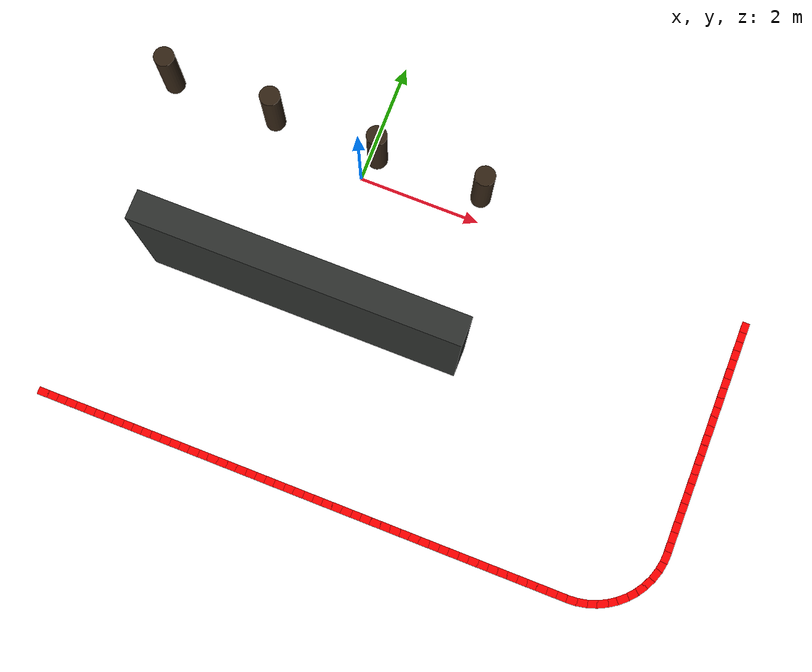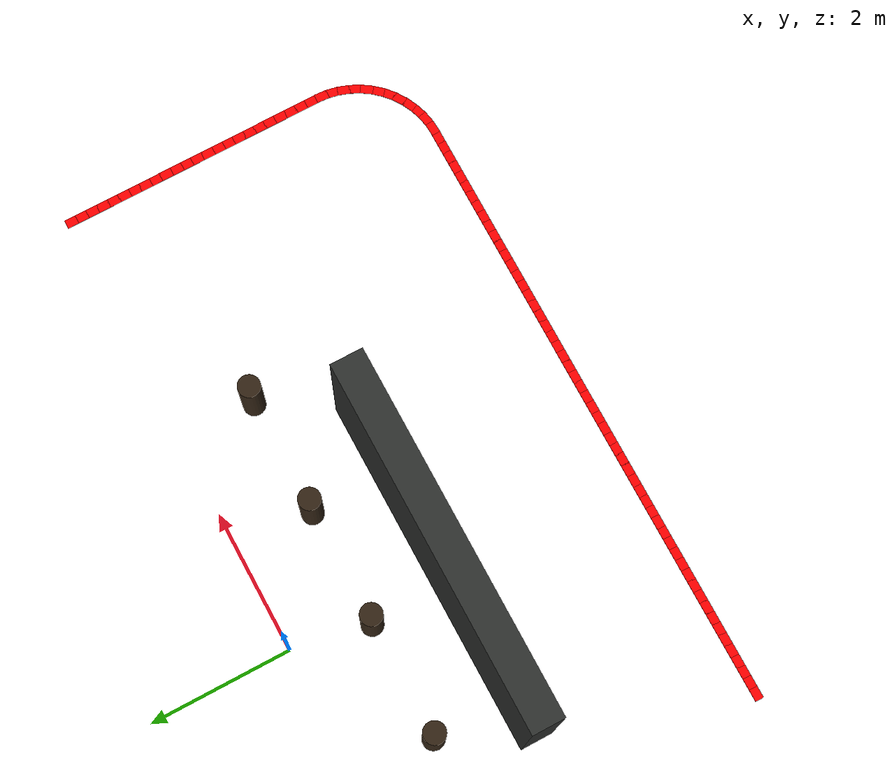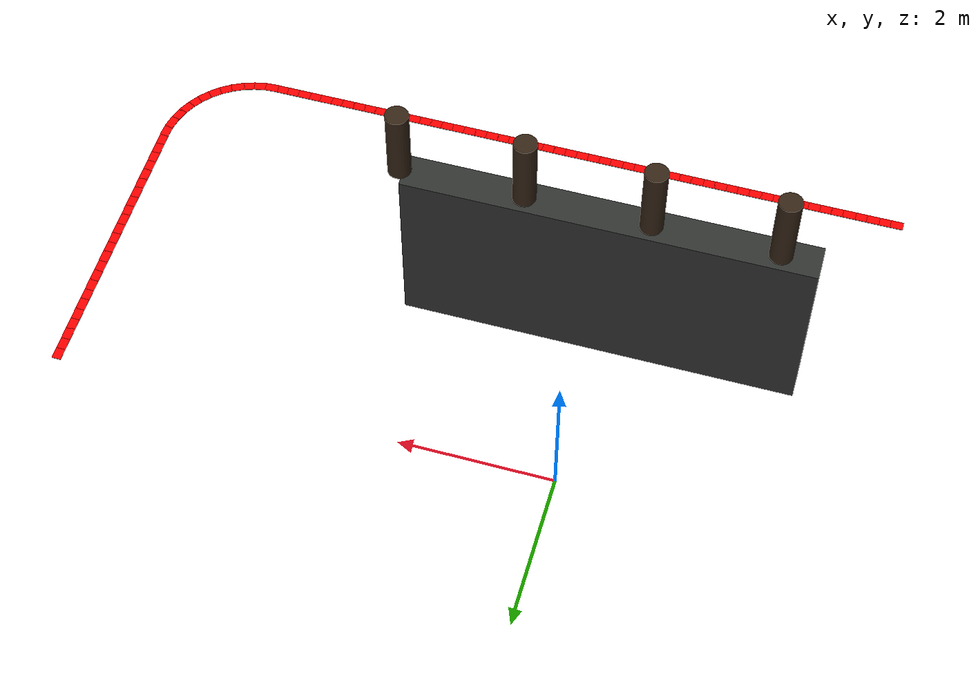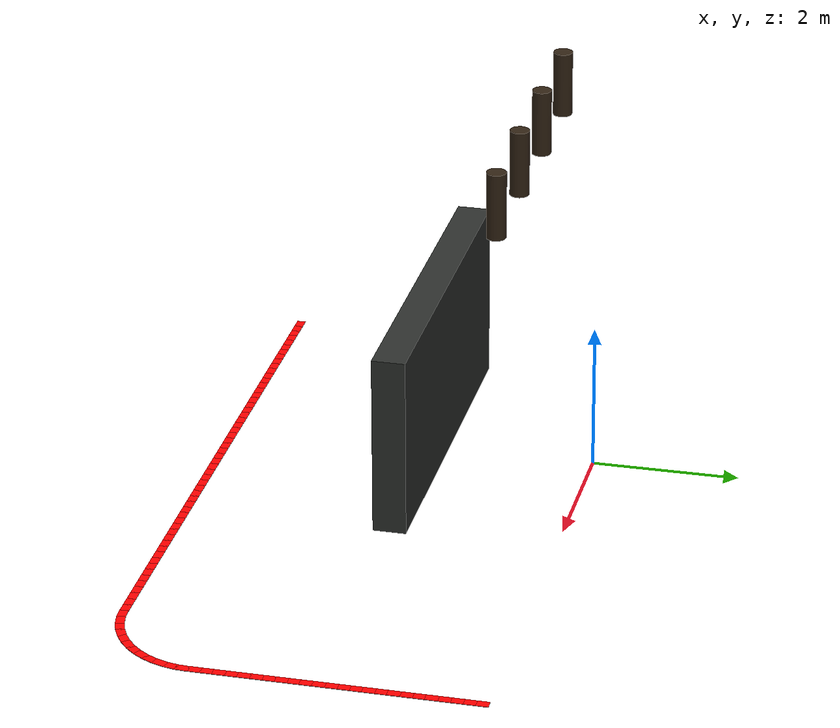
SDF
<sdf version="1.6">
 <world name="transformer_world">
  <model name="radiator_right">
   <static>true</static>
   <pose>0.0 -2.225 1.2398399999999998 0 0 0</pose>
   <link name="link">
    <collision name="collision">
     <geometry><box><size>5.04 0.45 2.4796799999999997</size></box></geometry>
    </collision>
    <visual name="visual">
     <geometry><box><size>5.04 0.45 2.4796799999999997</size></box></geometry>
     <material><ambient>0.18 0.19 0.18 1</ambient><diffuse>0.18 0.19 0.18 1</diffuse></material>
    </visual>
   </link>
  </model>
  <model name="transformer_bushing_0">
   <static>true</static>
   <pose>-2.1 -0.9 4.65 0 0 0</pose>
   <link name="link">
    <collision name="collision">
     <geometry><cylinder><radius>0.13</radius><length>0.9</length></cylinder></geometry>
    </collision>
    <visual name="visual">
     <geometry><cylinder><radius>0.13</radius><length>0.9</length></cylinder></geometry>
     <material><ambient>0.20 0.14 0.08 1</ambient><diffuse>0.20 0.14 0.08 1</diffuse></material>
    </visual>
   </link>
  </model>
  <model name="transformer_bushing_1">
   <static>true</static>
   <pose>-0.7 -0.9 4.65 0 0 0</pose>
   <link name="link">
    <collision name="collision">
     <geometry><cylinder><radius>0.13</radius><length>0.9</length></cylinder></geometry>
    </collision>
    <visual name="visual">
     <geometry><cylinder><radius>0.13</radius><length>0.9</length></cylinder></geometry>
     <material><ambient>0.20 0.14 0.08 1</ambient><diffuse>0.20 0.14 0.08 1</diffuse></material>
    </visual>
   </link>
  </model>
  <model name="transformer_bushing_2">
   <static>true</static>
   <pose>0.7 -0.9 4.65 0 0 0</pose>
   <link name="link">
    <collision name="collision">
     <geometry><cylinder><radius>0.13</radius><length>0.9</length></cylinder></geometry>
    </collision>
    <visual name="visual">
     <geometry><cylinder><radius>0.13</radius><length>0.9</length></cylinder></geometry>
     <material><ambient>0.20 0.14 0.08 1</ambient><diffuse>0.20 0.14 0.08 1</diffuse></material>
    </visual>
   </link>
  </model>
  <model name="transformer_bushing_3">
   <static>true</static>
   <pose>2.1 -0.9 4.65 0 0 0</pose>
   <link name="link">
    <collision name="collision">
     <geometry><cylinder><radius>0.13</radius><length>0.9</length></cylinder></geometry>
    </collision>
    <visual name="visual">
     <geometry><cylinder><radius>0.13</radius><length>0.9</length></cylinder></geometry>
     <material><ambient>0.20 0.14 0.08 1</ambient><diffuse>0.20 0.14 0.08 1</diffuse></material>
    </visual>
   </link>
  </model>
  <model name="path_bottom_12">
   <static>true</static>
   <pose>-3.32239 -5.00000 0.00300 0 0 0.00000</pose>
   <link name="link">
    <visual name="visual">
     <cast_shadows>false</cast_shadows>
     <geometry><box><size>0.16821 0.12000 0.00600</size></box></geometry>
     <material><ambient>1 0 0 1</ambient><diffuse>1 0 0 1</diffuse><emissive>0.35 0 0 1</emissive></material>
    </visual>
   </link>
  </model>
  <model name="path_bottom_13">
   <static>true</static>
   <pose>-3.16418 -5.00000 0.00300 0 0 0.00000</pose>
   <link name="link">
    <visual name="visual">
     <cast_shadows>false</cast_shadows>
     <geometry><box><size>0.16821 0.12000 0.00600</size></box></geometry>
     <material><ambient>1 0 0 1</ambient><diffuse>1 0 0 1</diffuse><emissive>0.35 0 0 1</emissive></material>
    </visual>
   </link>
  </model>
  <model name="path_bottom_14">
   <static>true</static>
   <pose>-3.00597 -5.00000 0.00300 0 0 0.00000</pose>
   <link name="link">
    <visual name="visual">
     <cast_shadows>false</cast_shadows>
     <geometry><box><size>0.16821 0.12000 0.00600</size></box></geometry>
     <material><ambient>1 0 0 1</ambient><diffuse>1 0 0 1</diffuse><emissive>0.35 0 0 1</emissive></material>
    </visual>
   </link>
  </model>
  <model name="path_bottom_15">
   <static>true</static>
   <pose>-2.84776 -5.00000 0.00300 0 0 0.00000</pose>
   <link name="link">
    <visual name="visual">
     <cast_shadows>false</cast_shadows>
     <geometry><box><size>0.16821 0.12000 0.00600</size></box></geometry>
     <material><ambient>1 0 0 1</ambient><diffuse>1 0 0 1</diffuse><emissive>0.35 0 0 1</emissive></material>
    </visual>
   </link>
  </model>
  <model name="path_bottom_16">
   <static>true</static>
   <pose>-2.68955 -5.00000 0.00300 0 0 0.00000</pose>
   <link name="link">
    <visual name="visual">
     <cast_shadows>false</cast_shadows>
     <geometry><box><size>0.16821 0.12000 0.00600</size></box></geometry>
     <material><ambient>1 0 0 1</ambient><diffuse>1 0 0 1</diffuse><emissive>0.35 0 0 1</emissive></material>
    </visual>
   </link>
  </model>
  <model name="path_bottom_17">
   <static>true</static>
   <pose>-2.53134 -5.00000 0.00300 0 0 0.00000</pose>
   <link name="link">
    <visual name="visual">
     <cast_shadows>false</cast_shadows>
     <geometry><box><size>0.16821 0.12000 0.00600</size></box></geometry>
     <material><ambient>1 0 0 1</ambient><diffuse>1 0 0 1</diffuse><emissive>0.35 0 0 1</emissive></material>
    </visual>
   </link>
  </model>
  <model name="path_bottom_18">
   <static>true</static>
   <pose>-2.37313 -5.00000 0.00300 0 0 0.00000</pose>
   <link name="link">
    <visual name="visual">
     <cast_shadows>false</cast_shadows>
     <geometry><box><size>0.16821 0.12000 0.00600</size></box></geometry>
     <material><ambient>1 0 0 1</ambient><diffuse>1 0 0 1</diffuse><emissive>0.35 0 0 1</emissive></material>
    </visual>
   </link>
  </model>
  <model name="path_bottom_19">
   <static>true</static>
   <pose>-2.21493 -5.00000 0.00300 0 0 0.00000</pose>
   <link name="link">
    <visual name="visual">
     <cast_shadows>false</cast_shadows>
     <geometry><box><size>0.16821 0.12000 0.00600</size></box></geometry>
     <material><ambient>1 0 0 1</ambient><diffuse>1 0 0 1</diffuse><emissive>0.35 0 0 1</emissive></material>
    </visual>
   </link>
  </model>
  <model name="path_bottom_20">
   <static>true</static>
   <pose>-2.05672 -5.00000 0.00300 0 0 0.00000</pose>
   <link name="link">
    <visual name="visual">
     <cast_shadows>false</cast_shadows>
     <geometry><box><size>0.16821 0.12000 0.00600</size></box></geometry>
     <material><ambient>1 0 0 1</ambient><diffuse>1 0 0 1</diffuse><emissive>0.35 0 0 1</emissive></material>
    </visual>
   </link>
  </model>
  <model name="path_bottom_21">
   <static>true</static>
   <pose>-1.89851 -5.00000 0.00300 0 0 0.00000</pose>
   <link name="link">
    <visual name="visual">
     <cast_shadows>false</cast_shadows>
     <geometry><box><size>0.16821 0.12000 0.00600</size></box></geometry>
     <material><ambient>1 0 0 1</ambient><diffuse>1 0 0 1</diffuse><emissive>0.35 0 0 1</emissive></material>
    </visual>
   </link>
  </model>
  <model name="path_bottom_22">
   <static>true</static>
   <pose>-1.74030 -5.00000 0.00300 0 0 0.00000</pose>
   <link name="link">
    <visual name="visual">
     <cast_shadows>false</cast_shadows>
     <geometry><box><size>0.16821 0.12000 0.00600</size></box></geometry>
     <material><ambient>1 0 0 1</ambient><diffuse>1 0 0 1</diffuse><emissive>0.35 0 0 1</emissive></material>
    </visual>
   </link>
  </model>
  <model name="path_bottom_23">
   <static>true</static>
   <pose>-1.58209 -5.00000 0.00300 0 0 0.00000</pose>
   <link name="link">
    <visual name="visual">
     <cast_shadows>false</cast_shadows>
     <geometry><box><size>0.16821 0.12000 0.00600</size></box></geometry>
     <material><ambient>1 0 0 1</ambient><diffuse>1 0 0 1</diffuse><emissive>0.35 0 0 1</emissive></material>
    </visual>
   </link>
  </model>
  <model name="path_bottom_24">
   <static>true</static>
   <pose>-1.42388 -5.00000 0.00300 0 0 0.00000</pose>
   <link name="link">
    <visual name="visual">
     <cast_shadows>false</cast_shadows>
     <geometry><box><size>0.16821 0.12000 0.00600</size></box></geometry>
     <material><ambient>1 0 0 1</ambient><diffuse>1 0 0 1</diffuse><emissive>0.35 0 0 1</emissive></material>
    </visual>
   </link>
  </model>
  <model name="path_bottom_25">
   <static>true</static>
   <pose>-1.26567 -5.00000 0.00300 0 0 0.00000</pose>
   <link name="link">
    <visual name="visual">
     <cast_shadows>false</cast_shadows>
     <geometry><box><size>0.16821 0.12000 0.00600</size></box></geometry>
     <material><ambient>1 0 0 1</ambient><diffuse>1 0 0 1</diffuse><emissive>0.35 0 0 1</emissive></material>
    </visual>
   </link>
  </model>
  <model name="path_bottom_26">
   <static>true</static>
   <pose>-1.10746 -5.00000 0.00300 0 0 0.00000</pose>
   <link name="link">
    <visual name="visual">
     <cast_shadows>false</cast_shadows>
     <geometry><box><size>0.16821 0.12000 0.00600</size></box></geometry>
     <material><ambient>1 0 0 1</ambient><diffuse>1 0 0 1</diffuse><emissive>0.35 0 0 1</emissive></material>
    </visual>
   </link>
  </model>
  <model name="path_bottom_27">
   <static>true</static>
   <pose>-0.94925 -5.00000 0.00300 0 0 0.00000</pose>
   <link name="link">
    <visual name="visual">
     <cast_shadows>false</cast_shadows>
     <geometry><box><size>0.16821 0.12000 0.00600</size></box></geometry>
     <material><ambient>1 0 0 1</ambient><diffuse>1 0 0 1</diffuse><emissive>0.35 0 0 1</emissive></material>
    </visual>
   </link>
  </model>
  <model name="path_bottom_28">
   <static>true</static>
   <pose>-0.79104 -5.00000 0.00300 0 0 0.00000</pose>
   <link name="link">
    <visual name="visual">
     <cast_shadows>false</cast_shadows>
     <geometry><box><size>0.16821 0.12000 0.00600</size></box></geometry>
     <material><ambient>1 0 0 1</ambient><diffuse>1 0 0 1</diffuse><emissive>0.35 0 0 1</emissive></material>
    </visual>
   </link>
  </model>
  <model name="path_bottom_29">
   <static>true</static>
   <pose>-0.63284 -5.00000 0.00300 0 0 0.00000</pose>
   <link name="link">
    <visual name="visual">
     <cast_shadows>false</cast_shadows>
     <geometry><box><size>0.16821 0.12000 0.00600</size></box></geometry>
     <material><ambient>1 0 0 1</ambient><diffuse>1 0 0 1</diffuse><emissive>0.35 0 0 1</emissive></material>
    </visual>
   </link>
  </model>
  <model name="path_bottom_30">
   <static>true</static>
   <pose>-0.47463 -5.00000 0.00300 0 0 0.00000</pose>
   <link name="link">
    <visual name="visual">
     <cast_shadows>false</cast_shadows>
     <geometry><box><size>0.16821 0.12000 0.00600</size></box></geometry>
     <material><ambient>1 0 0 1</ambient><diffuse>1 0 0 1</diffuse><emissive>0.35 0 0 1</emissive></material>
    </visual>
   </link>
  </model>
  <model name="path_bottom_31">
   <static>true</static>
   <pose>-0.31642 -5.00000 0.00300 0 0 0.00000</pose>
   <link name="link">
    <visual name="visual">
     <cast_shadows>false</cast_shadows>
     <geometry><box><size>0.16821 0.12000 0.00600</size></box></geometry>
     <material><ambient>1 0 0 1</ambient><diffuse>1 0 0 1</diffuse><emissive>0.35 0 0 1</emissive></material>
    </visual>
   </link>
  </model>
  <model name="path_bottom_32">
   <static>true</static>
   <pose>-0.15821 -5.00000 0.00300 0 0 0.00000</pose>
   <link name="link">
    <visual name="visual">
     <cast_shadows>false</cast_shadows>
     <geometry><box><size>0.16821 0.12000 0.00600</size></box></geometry>
     <material><ambient>1 0 0 1</ambient><diffuse>1 0 0 1</diffuse><emissive>0.35 0 0 1</emissive></material>
    </visual>
   </link>
  </model>
  <model name="path_bottom_33">
   <static>true</static>
   <pose>0.00000 -5.00000 0.00300 0 0 0.00000</pose>
   <link name="link">
    <visual name="visual">
     <cast_shadows>false</cast_shadows>
     <geometry><box><size>0.16821 0.12000 0.00600</size></box></geometry>
     <material><ambient>1 0 0 1</ambient><diffuse>1 0 0 1</diffuse><emissive>0.35 0 0 1</emissive></material>
    </visual>
   </link>
  </model>
  <model name="path_bottom_34">
   <static>true</static>
   <pose>0.15821 -5.00000 0.00300 0 0 0.00000</pose>
   <link name="link">
    <visual name="visual">
     <cast_shadows>false</cast_shadows>
     <geometry><box><size>0.16821 0.12000 0.00600</size></box></geometry>
     <material><ambient>1 0 0 1</ambient><diffuse>1 0 0 1</diffuse><emissive>0.35 0 0 1</emissive></material>
    </visual>
   </link>
  </model>
  <model name="path_bottom_35">
   <static>true</static>
   <pose>0.31642 -5.00000 0.00300 0 0 0.00000</pose>
   <link name="link">
    <visual name="visual">
     <cast_shadows>false</cast_shadows>
     <geometry><box><size>0.16821 0.12000 0.00600</size></box></geometry>
     <material><ambient>1 0 0 1</ambient><diffuse>1 0 0 1</diffuse><emissive>0.35 0 0 1</emissive></material>
    </visual>
   </link>
  </model>
  <model name="path_bottom_36">
   <static>true</static>
   <pose>0.47463 -5.00000 0.00300 0 0 0.00000</pose>
   <link name="link">
    <visual name="visual">
     <cast_shadows>false</cast_shadows>
     <geometry><box><size>0.16821 0.12000 0.00600</size></box></geometry>
     <material><ambient>1 0 0 1</ambient><diffuse>1 0 0 1</diffuse><emissive>0.35 0 0 1</emissive></material>
    </visual>
   </link>
  </model>
  <model name="path_bottom_37">
   <static>true</static>
   <pose>0.63284 -5.00000 0.00300 0 0 0.00000</pose>
   <link name="link">
    <visual name="visual">
     <cast_shadows>false</cast_shadows>
     <geometry><box><size>0.16821 0.12000 0.00600</size></box></geometry>
     <material><ambient>1 0 0 1</ambient><diffuse>1 0 0 1</diffuse><emissive>0.35 0 0 1</emissive></material>
    </visual>
   </link>
  </model>
  <model name="path_bottom_38">
   <static>true</static>
   <pose>0.79104 -5.00000 0.00300 0 0 0.00000</pose>
   <link name="link">
    <visual name="visual">
     <cast_shadows>false</cast_shadows>
     <geometry><box><size>0.16821 0.12000 0.00600</size></box></geometry>
     <material><ambient>1 0 0 1</ambient><diffuse>1 0 0 1</diffuse><emissive>0.35 0 0 1</emissive></material>
    </visual>
   </link>
  </model>
  <model name="path_bottom_39">
   <static>true</static>
   <pose>0.94925 -5.00000 0.00300 0 0 0.00000</pose>
   <link name="link">
    <visual name="visual">
     <cast_shadows>false</cast_shadows>
     <geometry><box><size>0.16821 0.12000 0.00600</size></box></geometry>
     <material><ambient>1 0 0 1</ambient><diffuse>1 0 0 1</diffuse><emissive>0.35 0 0 1</emissive></material>
    </visual>
   </link>
  </model>
  <model name="path_bottom_40">
   <static>true</static>
   <pose>1.10746 -5.00000 0.00300 0 0 0.00000</pose>
   <link name="link">
    <visual name="visual">
     <cast_shadows>false</cast_shadows>
     <geometry><box><size>0.16821 0.12000 0.00600</size></box></geometry>
     <material><ambient>1 0 0 1</ambient><diffuse>1 0 0 1</diffuse><emissive>0.35 0 0 1</emissive></material>
    </visual>
   </link>
  </model>
  <model name="path_bottom_41">
   <static>true</static>
   <pose>1.26567 -5.00000 0.00300 0 0 0.00000</pose>
   <link name="link">
    <visual name="visual">
     <cast_shadows>false</cast_shadows>
     <geometry><box><size>0.16821 0.12000 0.00600</size></box></geometry>
     <material><ambient>1 0 0 1</ambient><diffuse>1 0 0 1</diffuse><emissive>0.35 0 0 1</emissive></material>
    </visual>
   </link>
  </model>
  <model name="path_bottom_42">
   <static>true</static>
   <pose>1.42388 -5.00000 0.00300 0 0 0.00000</pose>
   <link name="link">
    <visual name="visual">
     <cast_shadows>false</cast_shadows>
     <geometry><box><size>0.16821 0.12000 0.00600</size></box></geometry>
     <material><ambient>1 0 0 1</ambient><diffuse>1 0 0 1</diffuse><emissive>0.35 0 0 1</emissive></material>
    </visual>
   </link>
  </model>
  <model name="path_bottom_43">
   <static>true</static>
   <pose>1.58209 -5.00000 0.00300 0 0 0.00000</pose>
   <link name="link">
    <visual name="visual">
     <cast_shadows>false</cast_shadows>
     <geometry><box><size>0.16821 0.12000 0.00600</size></box></geometry>
     <material><ambient>1 0 0 1</ambient><diffuse>1 0 0 1</diffuse><emissive>0.35 0 0 1</emissive></material>
    </visual>
   </link>
  </model>
  <model name="path_bottom_44">
   <static>true</static>
   <pose>1.74030 -5.00000 0.00300 0 0 0.00000</pose>
   <link name="link">
    <visual name="visual">
     <cast_shadows>false</cast_shadows>
     <geometry><box><size>0.16821 0.12000 0.00600</size></box></geometry>
     <material><ambient>1 0 0 1</ambient><diffuse>1 0 0 1</diffuse><emissive>0.35 0 0 1</emissive></material>
    </visual>
   </link>
  </model>
  <model name="path_bottom_45">
   <static>true</static>
   <pose>1.89851 -5.00000 0.00300 0 0 0.00000</pose>
   <link name="link">
    <visual name="visual">
     <cast_shadows>false</cast_shadows>
     <geometry><box><size>0.16821 0.12000 0.00600</size></box></geometry>
     <material><ambient>1 0 0 1</ambient><diffuse>1 0 0 1</diffuse><emissive>0.35 0 0 1</emissive></material>
    </visual>
   </link>
  </model>
  <model name="path_bottom_46">
   <static>true</static>
   <pose>2.05672 -5.00000 0.00300 0 0 0.00000</pose>
   <link name="link">
    <visual name="visual">
     <cast_shadows>false</cast_shadows>
     <geometry><box><size>0.16821 0.12000 0.00600</size></box></geometry>
     <material><ambient>1 0 0 1</ambient><diffuse>1 0 0 1</diffuse><emissive>0.35 0 0 1</emissive></material>
    </visual>
   </link>
  </model>
  <model name="path_bottom_47">
   <static>true</static>
   <pose>2.21493 -5.00000 0.00300 0 0 0.00000</pose>
   <link name="link">
    <visual name="visual">
     <cast_shadows>false</cast_shadows>
     <geometry><box><size>0.16821 0.12000 0.00600</size></box></geometry>
     <material><ambient>1 0 0 1</ambient><diffuse>1 0 0 1</diffuse><emissive>0.35 0 0 1</emissive></material>
    </visual>
   </link>
  </model>
  <model name="path_bottom_48">
   <static>true</static>
   <pose>2.37313 -5.00000 0.00300 0 0 0.00000</pose>
   <link name="link">
    <visual name="visual">
     <cast_shadows>false</cast_shadows>
     <geometry><box><size>0.16821 0.12000 0.00600</size></box></geometry>
     <material><ambient>1 0 0 1</ambient><diffuse>1 0 0 1</diffuse><emissive>0.35 0 0 1</emissive></material>
    </visual>
   </link>
  </model>
  <model name="path_bottom_49">
   <static>true</static>
   <pose>2.53134 -5.00000 0.00300 0 0 0.00000</pose>
   <link name="link">
    <visual name="visual">
     <cast_shadows>false</cast_shadows>
     <geometry><box><size>0.16821 0.12000 0.00600</size></box></geometry>
     <material><ambient>1 0 0 1</ambient><diffuse>1 0 0 1</diffuse><emissive>0.35 0 0 1</emissive></material>
    </visual>
   </link>
  </model>
  <model name="path_bottom_50">
   <static>true</static>
   <pose>2.68955 -5.00000 0.00300 0 0 0.00000</pose>
   <link name="link">
    <visual name="visual">
     <cast_shadows>false</cast_shadows>
     <geometry><box><size>0.16821 0.12000 0.00600</size></box></geometry>
     <material><ambient>1 0 0 1</ambient><diffuse>1 0 0 1</diffuse><emissive>0.35 0 0 1</emissive></material>
    </visual>
   </link>
  </model>
  <model name="path_bottom_51">
   <static>true</static>
   <pose>2.84776 -5.00000 0.00300 0 0 0.00000</pose>
   <link name="link">
    <visual name="visual">
     <cast_shadows>false</cast_shadows>
     <geometry><box><size>0.16821 0.12000 0.00600</size></box></geometry>
     <material><ambient>1 0 0 1</ambient><diffuse>1 0 0 1</diffuse><emissive>0.35 0 0 1</emissive></material>
    </visual>
   </link>
  </model>
  <model name="path_bottom_52">
   <static>true</static>
   <pose>3.00597 -5.00000 0.00300 0 0 0.00000</pose>
   <link name="link">
    <visual name="visual">
     <cast_shadows>false</cast_shadows>
     <geometry><box><size>0.16821 0.12000 0.00600</size></box></geometry>
     <material><ambient>1 0 0 1</ambient><diffuse>1 0 0 1</diffuse><emissive>0.35 0 0 1</emissive></material>
    </visual>
   </link>
  </model>
  <model name="path_bottom_53">
   <static>true</static>
   <pose>3.16418 -5.00000 0.00300 0 0 0.00000</pose>
   <link name="link">
    <visual name="visual">
     <cast_shadows>false</cast_shadows>
     <geometry><box><size>0.16821 0.12000 0.00600</size></box></geometry>
     <material><ambient>1 0 0 1</ambient><diffuse>1 0 0 1</diffuse><emissive>0.35 0 0 1</emissive></material>
    </visual>
   </link>
  </model>
  <model name="path_bottom_54">
   <static>true</static>
   <pose>3.32239 -5.00000 0.00300 0 0 0.00000</pose>
   <link name="link">
    <visual name="visual">
     <cast_shadows>false</cast_shadows>
     <geometry><box><size>0.16821 0.12000 0.00600</size></box></geometry>
     <material><ambient>1 0 0 1</ambient><diffuse>1 0 0 1</diffuse><emissive>0.35 0 0 1</emissive></material>
    </visual>
   </link>
  </model>
  <model name="path_bottom_55">
   <static>true</static>
   <pose>3.48060 -5.00000 0.00300 0 0 0.00000</pose>
   <link name="link">
    <visual name="visual">
     <cast_shadows>false</cast_shadows>
     <geometry><box><size>0.16821 0.12000 0.00600</size></box></geometry>
     <material><ambient>1 0 0 1</ambient><diffuse>1 0 0 1</diffuse><emissive>0.35 0 0 1</emissive></material>
    </visual>
   </link>
  </model>
  <model name="path_bottom_56">
   <static>true</static>
   <pose>3.63881 -5.00000 0.00300 0 0 0.00000</pose>
   <link name="link">
    <visual name="visual">
     <cast_shadows>false</cast_shadows>
     <geometry><box><size>0.16821 0.12000 0.00600</size></box></geometry>
     <material><ambient>1 0 0 1</ambient><diffuse>1 0 0 1</diffuse><emissive>0.35 0 0 1</emissive></material>
    </visual>
   </link>
  </model>
  <model name="path_bottom_57">
   <static>true</static>
   <pose>3.79701 -5.00000 0.00300 0 0 0.00000</pose>
   <link name="link">
    <visual name="visual">
     <cast_shadows>false</cast_shadows>
     <geometry><box><size>0.16821 0.12000 0.00600</size></box></geometry>
     <material><ambient>1 0 0 1</ambient><diffuse>1 0 0 1</diffuse><emissive>0.35 0 0 1</emissive></material>
    </visual>
   </link>
  </model>
  <model name="path_bottom_58">
   <static>true</static>
   <pose>3.95522 -5.00000 0.00300 0 0 0.00000</pose>
   <link name="link">
    <visual name="visual">
     <cast_shadows>false</cast_shadows>
     <geometry><box><size>0.16821 0.12000 0.00600</size></box></geometry>
     <material><ambient>1 0 0 1</ambient><diffuse>1 0 0 1</diffuse><emissive>0.35 0 0 1</emissive></material>
    </visual>
   </link>
  </model>
  <model name="path_bottom_59">
   <static>true</static>
   <pose>4.11343 -5.00000 0.00300 0 0 0.00000</pose>
   <link name="link">
    <visual name="visual">
     <cast_shadows>false</cast_shadows>
     <geometry><box><size>0.16821 0.12000 0.00600</size></box></geometry>
     <material><ambient>1 0 0 1</ambient><diffuse>1 0 0 1</diffuse><emissive>0.35 0 0 1</emissive></material>
    </visual>
   </link>
  </model>
  <model name="path_bottom_60">
   <static>true</static>
   <pose>4.27164 -5.00000 0.00300 0 0 0.00000</pose>
   <link name="link">
    <visual name="visual">
     <cast_shadows>false</cast_shadows>
     <geometry><box><size>0.16821 0.12000 0.00600</size></box></geometry>
     <material><ambient>1 0 0 1</ambient><diffuse>1 0 0 1</diffuse><emissive>0.35 0 0 1</emissive></material>
    </visual>
   </link>
  </model>
  <model name="path_bottom_61">
   <static>true</static>
   <pose>4.42985 -5.00000 0.00300 0 0 0.00000</pose>
   <link name="link">
    <visual name="visual">
     <cast_shadows>false</cast_shadows>
     <geometry><box><size>0.16821 0.12000 0.00600</size></box></geometry>
     <material><ambient>1 0 0 1</ambient><diffuse>1 0 0 1</diffuse><emissive>0.35 0 0 1</emissive></material>
    </visual>
   </link>
  </model>
  <model name="path_bottom_62">
   <static>true</static>
   <pose>4.58806 -5.00000 0.00300 0 0 0.00000</pose>
   <link name="link">
    <visual name="visual">
     <cast_shadows>false</cast_shadows>
     <geometry><box><size>0.16821 0.12000 0.00600</size></box></geometry>
     <material><ambient>1 0 0 1</ambient><diffuse>1 0 0 1</diffuse><emissive>0.35 0 0 1</emissive></material>
    </visual>
   </link>
  </model>
  <model name="path_bottom_63">
   <static>true</static>
   <pose>4.74627 -5.00000 0.00300 0 0 0.00000</pose>
   <link name="link">
    <visual name="visual">
     <cast_shadows>false</cast_shadows>
     <geometry><box><size>0.16821 0.12000 0.00600</size></box></geometry>
     <material><ambient>1 0 0 1</ambient><diffuse>1 0 0 1</diffuse><emissive>0.35 0 0 1</emissive></material>
    </visual>
   </link>
  </model>
  <model name="path_bottom_64">
   <static>true</static>
   <pose>4.90448 -5.00000 0.00300 0 0 0.00000</pose>
   <link name="link">
    <visual name="visual">
     <cast_shadows>false</cast_shadows>
     <geometry><box><size>0.16821 0.12000 0.00600</size></box></geometry>
     <material><ambient>1 0 0 1</ambient><diffuse>1 0 0 1</diffuse><emissive>0.35 0 0 1</emissive></material>
    </visual>
   </link>
  </model>
  <model name="path_bottom_65">
   <static>true</static>
   <pose>5.06269 -5.00000 0.00300 0 0 0.00000</pose>
   <link name="link">
    <visual name="visual">
     <cast_shadows>false</cast_shadows>
     <geometry><box><size>0.16821 0.12000 0.00600</size></box></geometry>
     <material><ambient>1 0 0 1</ambient><diffuse>1 0 0 1</diffuse><emissive>0.35 0 0 1</emissive></material>
    </visual>
   </link>
  </model>
  <model name="path_bottom_66">
   <static>true</static>
   <pose>5.22090 -5.00000 0.00300 0 0 0.00000</pose>
   <link name="link">
    <visual name="visual">
     <cast_shadows>false</cast_shadows>
     <geometry><box><size>0.16821 0.12000 0.00600</size></box></geometry>
     <material><ambient>1 0 0 1</ambient><diffuse>1 0 0 1</diffuse><emissive>0.35 0 0 1</emissive></material>
    </visual>
   </link>
  </model>
  <model name="path_corner_br_0">
   <static>true</static>
   <pose>5.37848 -4.99743 0.00300 0 0 0.06545</pose>
   <link name="link">
    <visual name="visual">
     <cast_shadows>false</cast_shadows>
     <geometry><box><size>0.17708 0.12000 0.00600</size></box></geometry>
     <material><ambient>1 0 0 1</ambient><diffuse>1 0 0 1</diffuse><emissive>0.35 0 0 1</emissive></material>
    </visual>
   </link>
  </model>
  <model name="path_corner_br_1">
   <static>true</static>
   <pose>5.53411 -4.97694 0.00300 0 0 0.19635</pose>
   <link name="link">
    <visual name="visual">
     <cast_shadows>false</cast_shadows>
     <geometry><box><size>0.17708 0.12000 0.00600</size></box></geometry>
     <material><ambient>1 0 0 1</ambient><diffuse>1 0 0 1</diffuse><emissive>0.35 0 0 1</emissive></material>
    </visual>
   </link>
  </model>
  <model name="path_corner_br_2">
   <static>true</static>
   <pose>5.68573 -4.93632 0.00300 0 0 0.32725</pose>
   <link name="link">
    <visual name="visual">
     <cast_shadows>false</cast_shadows>
     <geometry><box><size>0.17708 0.12000 0.00600</size></box></geometry>
     <material><ambient>1 0 0 1</ambient><diffuse>1 0 0 1</diffuse><emissive>0.35 0 0 1</emissive></material>
    </visual>
   </link>
  </model>
  <model name="path_corner_br_3">
   <static>true</static>
   <pose>5.83075 -4.87625 0.00300 0 0 0.45815</pose>
   <link name="link">
    <visual name="visual">
     <cast_shadows>false</cast_shadows>
     <geometry><box><size>0.17708 0.12000 0.00600</size></box></geometry>
     <material><ambient>1 0 0 1</ambient><diffuse>1 0 0 1</diffuse><emissive>0.35 0 0 1</emissive></material>
    </visual>
   </link>
  </model>
  <model name="path_corner_br_4">
   <static>true</static>
   <pose>5.96668 -4.79776 0.00300 0 0 0.58905</pose>
   <link name="link">
    <visual name="visual">
     <cast_shadows>false</cast_shadows>
     <geometry><box><size>0.17708 0.12000 0.00600</size></box></geometry>
     <material><ambient>1 0 0 1</ambient><diffuse>1 0 0 1</diffuse><emissive>0.35 0 0 1</emissive></material>
    </visual>
   </link>
  </model>
  <model name="path_corner_br_5">
   <static>true</static>
   <pose>6.09121 -4.70221 0.00300 0 0 0.71995</pose>
   <link name="link">
    <visual name="visual">
     <cast_shadows>false</cast_shadows>
     <geometry><box><size>0.17708 0.12000 0.00600</size></box></geometry>
     <material><ambient>1 0 0 1</ambient><diffuse>1 0 0 1</diffuse><emissive>0.35 0 0 1</emissive></material>
    </visual>
   </link>
  </model>
  <model name="path_corner_br_6">
   <static>true</static>
   <pose>6.20221 -4.59121 0.00300 0 0 0.85085</pose>
   <link name="link">
    <visual name="visual">
     <cast_shadows>false</cast_shadows>
     <geometry><box><size>0.17708 0.12000 0.00600</size></box></geometry>
     <material><ambient>1 0 0 1</ambient><diffuse>1 0 0 1</diffuse><emissive>0.35 0 0 1</emissive></material>
    </visual>
   </link>
  </model>
  <model name="path_corner_br_7">
   <static>true</static>
   <pose>6.29776 -4.46668 0.00300 0 0 0.98175</pose>
   <link name="link">
    <visual name="visual">
     <cast_shadows>false</cast_shadows>
     <geometry><box><size>0.17708 0.12000 0.00600</size></box></geometry>
     <material><ambient>1 0 0 1</ambient><diffuse>1 0 0 1</diffuse><emissive>0.35 0 0 1</emissive></material>
    </visual>
   </link>
  </model>
  <model name="path_corner_br_8">
   <static>true</static>
   <pose>6.37625 -4.33075 0.00300 0 0 1.11265</pose>
   <link name="link">
    <visual name="visual">
     <cast_shadows>false</cast_shadows>
     <geometry><box><size>0.17708 0.12000 0.00600</size></box></geometry>
     <material><ambient>1 0 0 1</ambient><diffuse>1 0 0 1</diffuse><emissive>0.35 0 0 1</emissive></material>
    </visual>
   </link>
  </model>
  <model name="path_corner_br_9">
   <static>true</static>
   <pose>6.43632 -4.18573 0.00300 0 0 1.24355</pose>
   <link name="link">
    <visual name="visual">
     <cast_shadows>false</cast_shadows>
     <geometry><box><size>0.17708 0.12000 0.00600</size></box></geometry>
     <material><ambient>1 0 0 1</ambient><diffuse>1 0 0 1</diffuse><emissive>0.35 0 0 1</emissive></material>
    </visual>
   </link>
  </model>
  <model name="path_corner_br_10">
   <static>true</static>
   <pose>6.47694 -4.03411 0.00300 0 0 1.37445</pose>
   <link name="link">
    <visual name="visual">
     <cast_shadows>false</cast_shadows>
     <geometry><box><size>0.17708 0.12000 0.00600</size></box></geometry>
     <material><ambient>1 0 0 1</ambient><diffuse>1 0 0 1</diffuse><emissive>0.35 0 0 1</emissive></material>
    </visual>
   </link>
  </model>
  <model name="path_corner_br_11">
   <static>true</static>
   <pose>6.49743 -3.87848 0.00300 0 0 1.50535</pose>
   <link name="link">
    <visual name="visual">
     <cast_shadows>false</cast_shadows>
     <geometry><box><size>0.17708 0.12000 0.00600</size></box></geometry>
     <material><ambient>1 0 0 1</ambient><diffuse>1 0 0 1</diffuse><emissive>0.35 0 0 1</emissive></material>
    </visual>
   </link>
  </model>
  <model name="path_right_0">
   <static>true</static>
   <pose>6.50000 -3.72083 0.00300 0 0 1.57080</pose>
   <link name="link">
    <visual name="visual">
     <cast_shadows>false</cast_shadows>
     <geometry><box><size>0.16833 0.12000 0.00600</size></box></geometry>
     <material><ambient>1 0 0 1</ambient><diffuse>1 0 0 1</diffuse><emissive>0.35 0 0 1</emissive></material>
    </visual>
   </link>
  </model>
  <model name="path_right_1">
   <static>true</static>
   <pose>6.50000 -3.56250 0.00300 0 0 1.57080</pose>
   <link name="link">
    <visual name="visual">
     <cast_shadows>false</cast_shadows>
     <geometry><box><size>0.16833 0.12000 0.00600</size></box></geometry>
     <material><ambient>1 0 0 1</ambient><diffuse>1 0 0 1</diffuse><emissive>0.35 0 0 1</emissive></material>
    </visual>
   </link>
  </model>
  <model name="path_right_2">
   <static>true</static>
   <pose>6.50000 -3.40417 0.00300 0 0 1.57080</pose>
   <link name="link">
    <visual name="visual">
     <cast_shadows>false</cast_shadows>
     <geometry><box><size>0.16833 0.12000 0.00600</size></box></geometry>
     <material><ambient>1 0 0 1</ambient><diffuse>1 0 0 1</diffuse><emissive>0.35 0 0 1</emissive></material>
    </visual>
   </link>
  </model>
  <model name="path_right_3">
   <static>true</static>
   <pose>6.50000 -3.24583 0.00300 0 0 1.57080</pose>
   <link name="link">
    <visual name="visual">
     <cast_shadows>false</cast_shadows>
     <geometry><box><size>0.16833 0.12000 0.00600</size></box></geometry>
     <material><ambient>1 0 0 1</ambient><diffuse>1 0 0 1</diffuse><emissive>0.35 0 0 1</emissive></material>
    </visual>
   </link>
  </model>
  <model name="path_right_4">
   <static>true</static>
   <pose>6.50000 -3.08750 0.00300 0 0 1.57080</pose>
   <link name="link">
    <visual name="visual">
     <cast_shadows>false</cast_shadows>
     <geometry><box><size>0.16833 0.12000 0.00600</size></box></geometry>
     <material><ambient>1 0 0 1</ambient><diffuse>1 0 0 1</diffuse><emissive>0.35 0 0 1</emissive></material>
    </visual>
   </link>
  </model>
  <model name="path_right_5">
   <static>true</static>
   <pose>6.50000 -2.92917 0.00300 0 0 1.57080</pose>
   <link name="link">
    <visual name="visual">
     <cast_shadows>false</cast_shadows>
     <geometry><box><size>0.16833 0.12000 0.00600</size></box></geometry>
     <material><ambient>1 0 0 1</ambient><diffuse>1 0 0 1</diffuse><emissive>0.35 0 0 1</emissive></material>
    </visual>
   </link>
  </model>
  <model name="path_right_6">
   <static>true</static>
   <pose>6.50000 -2.77083 0.00300 0 0 1.57080</pose>
   <link name="link">
    <visual name="visual">
     <cast_shadows>false</cast_shadows>
     <geometry><box><size>0.16833 0.12000 0.00600</size></box></geometry>
     <material><ambient>1 0 0 1</ambient><diffuse>1 0 0 1</diffuse><emissive>0.35 0 0 1</emissive></material>
    </visual>
   </link>
  </model>
  <model name="path_right_7">
   <static>true</static>
   <pose>6.50000 -2.61250 0.00300 0 0 1.57080</pose>
   <link name="link">
    <visual name="visual">
     <cast_shadows>false</cast_shadows>
     <geometry><box><size>0.16833 0.12000 0.00600</size></box></geometry>
     <material><ambient>1 0 0 1</ambient><diffuse>1 0 0 1</diffuse><emissive>0.35 0 0 1</emissive></material>
    </visual>
   </link>
  </model>
  <model name="path_right_8">
   <static>true</static>
   <pose>6.50000 -2.45417 0.00300 0 0 1.57080</pose>
   <link name="link">
    <visual name="visual">
     <cast_shadows>false</cast_shadows>
     <geometry><box><size>0.16833 0.12000 0.00600</size></box></geometry>
     <material><ambient>1 0 0 1</ambient><diffuse>1 0 0 1</diffuse><emissive>0.35 0 0 1</emissive></material>
    </visual>
   </link>
  </model>
  <model name="path_right_9">
   <static>true</static>
   <pose>6.50000 -2.29583 0.00300 0 0 1.57080</pose>
   <link name="link">
    <visual name="visual">
     <cast_shadows>false</cast_shadows>
     <geometry><box><size>0.16833 0.12000 0.00600</size></box></geometry>
     <material><ambient>1 0 0 1</ambient><diffuse>1 0 0 1</diffuse><emissive>0.35 0 0 1</emissive></material>
    </visual>
   </link>
  </model>
  <model name="path_right_10">
   <static>true</static>
   <pose>6.50000 -2.13750 0.00300 0 0 1.57080</pose>
   <link name="link">
    <visual name="visual">
     <cast_shadows>false</cast_shadows>
     <geometry><box><size>0.16833 0.12000 0.00600</size></box></geometry>
     <material><ambient>1 0 0 1</ambient><diffuse>1 0 0 1</diffuse><emissive>0.35 0 0 1</emissive></material>
    </visual>
   </link>
  </model>
  <model name="path_right_11">
   <static>true</static>
   <pose>6.50000 -1.97917 0.00300 0 0 1.57080</pose>
   <link name="link">
    <visual name="visual">
     <cast_shadows>false</cast_shadows>
     <geometry><box><size>0.16833 0.12000 0.00600</size></box></geometry>
     <material><ambient>1 0 0 1</ambient><diffuse>1 0 0 1</diffuse><emissive>0.35 0 0 1</emissive></material>
    </visual>
   </link>
  </model>
  <model name="path_right_12">
   <static>true</static>
   <pose>6.50000 -1.82083 0.00300 0 0 1.57080</pose>
   <link name="link">
    <visual name="visual">
     <cast_shadows>false</cast_shadows>
     <geometry><box><size>0.16833 0.12000 0.00600</size></box></geometry>
     <material><ambient>1 0 0 1</ambient><diffuse>1 0 0 1</diffuse><emissive>0.35 0 0 1</emissive></material>
    </visual>
   </link>
  </model>
  <model name="path_right_13">
   <static>true</static>
   <pose>6.50000 -1.66250 0.00300 0 0 1.57080</pose>
   <link name="link">
    <visual name="visual">
     <cast_shadows>false</cast_shadows>
     <geometry><box><size>0.16833 0.12000 0.00600</size></box></geometry>
     <material><ambient>1 0 0 1</ambient><diffuse>1 0 0 1</diffuse><emissive>0.35 0 0 1</emissive></material>
    </visual>
   </link>
  </model>
  <model name="path_right_14">
   <static>true</static>
   <pose>6.50000 -1.50417 0.00300 0 0 1.57080</pose>
   <link name="link">
    <visual name="visual">
     <cast_shadows>false</cast_shadows>
     <geometry><box><size>0.16833 0.12000 0.00600</size></box></geometry>
     <material><ambient>1 0 0 1</ambient><diffuse>1 0 0 1</diffuse><emissive>0.35 0 0 1</emissive></material>
    </visual>
   </link>
  </model>
  <model name="path_right_15">
   <static>true</static>
   <pose>6.50000 -1.34583 0.00300 0 0 1.57080</pose>
   <link name="link">
    <visual name="visual">
     <cast_shadows>false</cast_shadows>
     <geometry><box><size>0.16833 0.12000 0.00600</size></box></geometry>
     <material><ambient>1 0 0 1</ambient><diffuse>1 0 0 1</diffuse><emissive>0.35 0 0 1</emissive></material>
    </visual>
   </link>
  </model>
  <model name="path_right_16">
   <static>true</static>
   <pose>6.50000 -1.18750 0.00300 0 0 1.57080</pose>
   <link name="link">
    <visual name="visual">
     <cast_shadows>false</cast_shadows>
     <geometry><box><size>0.16833 0.12000 0.00600</size></box></geometry>
     <material><ambient>1 0 0 1</ambient><diffuse>1 0 0 1</diffuse><emissive>0.35 0 0 1</emissive></material>
    </visual>
   </link>
  </model>
  <model name="path_right_17">
   <static>true</static>
   <pose>6.50000 -1.02917 0.00300 0 0 1.57080</pose>
   <link name="link">
    <visual name="visual">
     <cast_shadows>false</cast_shadows>
     <geometry><box><size>0.16833 0.12000 0.00600</size></box></geometry>
     <material><ambient>1 0 0 1</ambient><diffuse>1 0 0 1</diffuse><emissive>0.35 0 0 1</emissive></material>
    </visual>
   </link>
  </model>
  <model name="path_right_18">
   <static>true</static>
   <pose>6.50000 -0.87083 0.00300 0 0 1.57080</pose>
   <link name="link">
    <visual name="visual">
     <cast_shadows>false</cast_shadows>
     <geometry><box><size>0.16833 0.12000 0.00600</size></box></geometry>
     <material><ambient>1 0 0 1</ambient><diffuse>1 0 0 1</diffuse><emissive>0.35 0 0 1</emissive></material>
    </visual>
   </link>
  </model>
  <model name="path_right_19">
   <static>true</static>
   <pose>6.50000 -0.71250 0.00300 0 0 1.57080</pose>
   <link name="link">
    <visual name="visual">
     <cast_shadows>false</cast_shadows>
     <geometry><box><size>0.16833 0.12000 0.00600</size></box></geometry>
     <material><ambient>1 0 0 1</ambient><diffuse>1 0 0 1</diffuse><emissive>0.35 0 0 1</emissive></material>
    </visual>
   </link>
  </model>
  <model name="path_right_20">
   <static>true</static>
   <pose>6.50000 -0.55417 0.00300 0 0 1.57080</pose>
   <link name="link">
    <visual name="visual">
     <cast_shadows>false</cast_shadows>
     <geometry><box><size>0.16833 0.12000 0.00600</size></box></geometry>
     <material><ambient>1 0 0 1</ambient><diffuse>1 0 0 1</diffuse><emissive>0.35 0 0 1</emissive></material>
    </visual>
   </link>
  </model>
  <model name="path_right_21">
   <static>true</static>
   <pose>6.50000 -0.39583 0.00300 0 0 1.57080</pose>
   <link name="link">
    <visual name="visual">
     <cast_shadows>false</cast_shadows>
     <geometry><box><size>0.16833 0.12000 0.00600</size></box></geometry>
     <material><ambient>1 0 0 1</ambient><diffuse>1 0 0 1</diffuse><emissive>0.35 0 0 1</emissive></material>
    </visual>
   </link>
  </model>
  <model name="path_right_22">
   <static>true</static>
   <pose>6.50000 -0.23750 0.00300 0 0 1.57080</pose>
   <link name="link">
    <visual name="visual">
     <cast_shadows>false</cast_shadows>
     <geometry><box><size>0.16833 0.12000 0.00600</size></box></geometry>
     <material><ambient>1 0 0 1</ambient><diffuse>1 0 0 1</diffuse><emissive>0.35 0 0 1</emissive></material>
    </visual>
   </link>
  </model>
  <model name="path_right_23">
   <static>true</static>
   <pose>6.50000 -0.07917 0.00300 0 0 1.57080</pose>
   <link name="link">
    <visual name="visual">
     <cast_shadows>false</cast_shadows>
     <geometry><box><size>0.16833 0.12000 0.00600</size></box></geometry>
     <material><ambient>1 0 0 1</ambient><diffuse>1 0 0 1</diffuse><emissive>0.35 0 0 1</emissive></material>
    </visual>
   </link>
  </model>
 </world>
</sdf>
